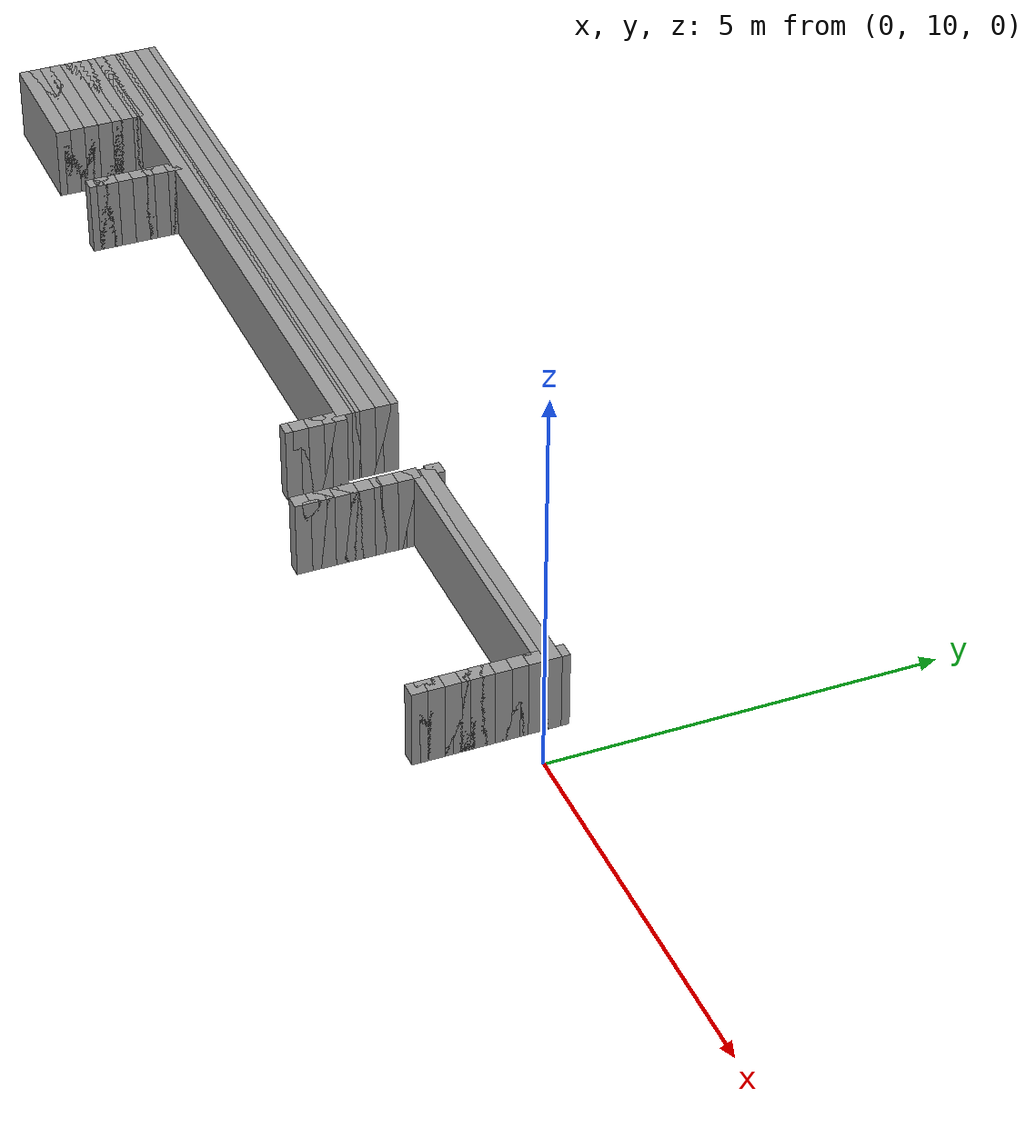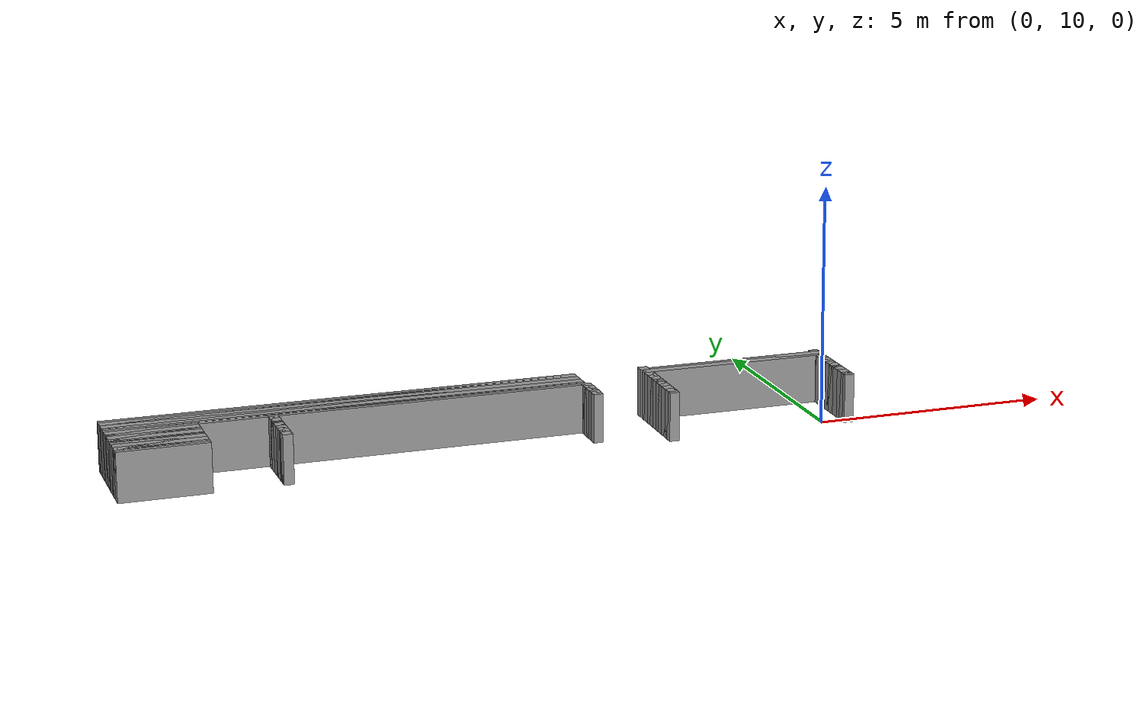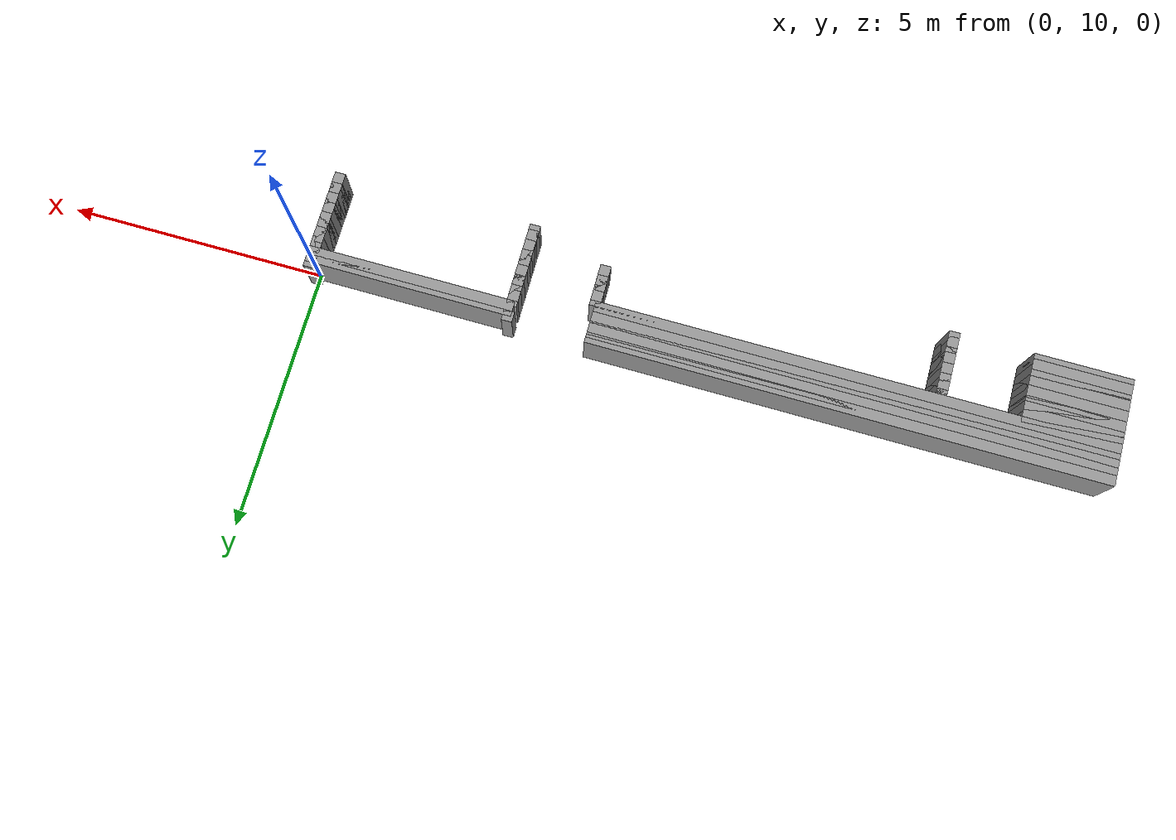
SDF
<sdf version="1.6">
 <world name="GridMap">
  <model name="GridMap">
   <link name="Wall_(116.5,84.0)">
    <collision name="Wall_(116.5,84.0)_Collision">
     <geometry><box><size>0.2 0.2 1.0</size></box></geometry>
     <pose>-11.65 8.4 0.5 0 -0 0</pose>
    </collision>
    <visual name="Wall_(116.5,84.0)_Visual">
     <geometry><box><size>0.2 0.2 1.0</size></box></geometry>
     <pose>-11.65 8.4 0.5 0 -0 0</pose>
     <material>
      <script><uri>file://media/materials/scripts/gazebo.material</uri><name>Gazebo/Grey</name></script>
      <ambient>1 1 1 1</ambient>
     </material>
     <meta><layer>0</layer></meta>
    </visual>
    <pose>0 0 0.5 0 -0 0</pose>
   </link>
   <link name="Wall_(140.0,84.0)">
    <collision name="Wall_(140.0,84.0)_Collision">
     <geometry><box><size>1.8 0.2 1.0</size></box></geometry>
     <pose>-14.0 8.4 0.5 0 -0 0</pose>
    </collision>
    <visual name="Wall_(140.0,84.0)_Visual">
     <geometry><box><size>1.8 0.2 1.0</size></box></geometry>
     <pose>-14.0 8.4 0.5 0 -0 0</pose>
     <material>
      <script><uri>file://media/materials/scripts/gazebo.material</uri><name>Gazebo/Grey</name></script>
      <ambient>1 1 1 1</ambient>
     </material>
     <meta><layer>0</layer></meta>
    </visual>
    <pose>0 0 0.5 0 -0 0</pose>
   </link>
   <link name="Wall_(1.0,85.0)">
    <collision name="Wall_(1.0,85.0)_Collision">
     <geometry><box><size>0.2 0.2 1.0</size></box></geometry>
     <pose>-0.1 8.5 0.5 0 -0 0</pose>
    </collision>
    <visual name="Wall_(1.0,85.0)_Visual">
     <geometry><box><size>0.2 0.2 1.0</size></box></geometry>
     <pose>-0.1 8.5 0.5 0 -0 0</pose>
     <material>
      <script><uri>file://media/materials/scripts/gazebo.material</uri><name>Gazebo/Grey</name></script>
      <ambient>1 1 1 1</ambient>
     </material>
     <meta><layer>0</layer></meta>
    </visual>
    <pose>0 0 0.5 0 -0 0</pose>
   </link>
   <link name="Wall_(38.5,85.0)">
    <collision name="Wall_(38.5,85.0)_Collision">
     <geometry><box><size>0.2 0.2 1.0</size></box></geometry>
     <pose>-3.85 8.5 0.5 0 -0 0</pose>
    </collision>
    <visual name="Wall_(38.5,85.0)_Visual">
     <geometry><box><size>0.2 0.2 1.0</size></box></geometry>
     <pose>-3.85 8.5 0.5 0 -0 0</pose>
     <material>
      <script><uri>file://media/materials/scripts/gazebo.material</uri><name>Gazebo/Grey</name></script>
      <ambient>1 1 1 1</ambient>
     </material>
     <meta><layer>0</layer></meta>
    </visual>
    <pose>0 0 0.5 0 -0 0</pose>
   </link>
   <link name="Wall_(116.5,85.0)">
    <collision name="Wall_(116.5,85.0)_Collision">
     <geometry><box><size>0.2 0.2 1.0</size></box></geometry>
     <pose>-11.65 8.5 0.5 0 -0 0</pose>
    </collision>
    <visual name="Wall_(116.5,85.0)_Visual">
     <geometry><box><size>0.2 0.2 1.0</size></box></geometry>
     <pose>-11.65 8.5 0.5 0 -0 0</pose>
     <material>
      <script><uri>file://media/materials/scripts/gazebo.material</uri><name>Gazebo/Grey</name></script>
      <ambient>1 1 1 1</ambient>
     </material>
     <meta><layer>0</layer></meta>
    </visual>
    <pose>0 0 0.5 0 -0 0</pose>
   </link>
   <link name="Wall_(140.0,85.0)">
    <collision name="Wall_(140.0,85.0)_Collision">
     <geometry><box><size>1.8 0.2 1.0</size></box></geometry>
     <pose>-14.0 8.5 0.5 0 -0 0</pose>
    </collision>
    <visual name="Wall_(140.0,85.0)_Visual">
     <geometry><box><size>1.8 0.2 1.0</size></box></geometry>
     <pose>-14.0 8.5 0.5 0 -0 0</pose>
     <material>
      <script><uri>file://media/materials/scripts/gazebo.material</uri><name>Gazebo/Grey</name></script>
      <ambient>1 1 1 1</ambient>
     </material>
     <meta><layer>0</layer></meta>
    </visual>
    <pose>0 0 0.5 0 -0 0</pose>
   </link>
   <link name="Wall_(1.0,86.0)">
    <collision name="Wall_(1.0,86.0)_Collision">
     <geometry><box><size>0.2 0.2 1.0</size></box></geometry>
     <pose>-0.1 8.6 0.5 0 -0 0</pose>
    </collision>
    <visual name="Wall_(1.0,86.0)_Visual">
     <geometry><box><size>0.2 0.2 1.0</size></box></geometry>
     <pose>-0.1 8.6 0.5 0 -0 0</pose>
     <material>
      <script><uri>file://media/materials/scripts/gazebo.material</uri><name>Gazebo/Grey</name></script>
      <ambient>1 1 1 1</ambient>
     </material>
     <meta><layer>0</layer></meta>
    </visual>
    <pose>0 0 0.5 0 -0 0</pose>
   </link>
   <link name="Wall_(38.5,86.0)">
    <collision name="Wall_(38.5,86.0)_Collision">
     <geometry><box><size>0.2 0.2 1.0</size></box></geometry>
     <pose>-3.85 8.6 0.5 0 -0 0</pose>
    </collision>
    <visual name="Wall_(38.5,86.0)_Visual">
     <geometry><box><size>0.2 0.2 1.0</size></box></geometry>
     <pose>-3.85 8.6 0.5 0 -0 0</pose>
     <material>
      <script><uri>file://media/materials/scripts/gazebo.material</uri><name>Gazebo/Grey</name></script>
      <ambient>1 1 1 1</ambient>
     </material>
     <meta><layer>0</layer></meta>
    </visual>
    <pose>0 0 0.5 0 -0 0</pose>
   </link>
   <link name="Wall_(116.5,86.0)">
    <collision name="Wall_(116.5,86.0)_Collision">
     <geometry><box><size>0.2 0.2 1.0</size></box></geometry>
     <pose>-11.65 8.6 0.5 0 -0 0</pose>
    </collision>
    <visual name="Wall_(116.5,86.0)_Visual">
     <geometry><box><size>0.2 0.2 1.0</size></box></geometry>
     <pose>-11.65 8.6 0.5 0 -0 0</pose>
     <material>
      <script><uri>file://media/materials/scripts/gazebo.material</uri><name>Gazebo/Grey</name></script>
      <ambient>1 1 1 1</ambient>
     </material>
     <meta><layer>0</layer></meta>
    </visual>
    <pose>0 0 0.5 0 -0 0</pose>
   </link>
   <link name="Wall_(140.0,86.0)">
    <collision name="Wall_(140.0,86.0)_Collision">
     <geometry><box><size>1.8 0.2 1.0</size></box></geometry>
     <pose>-14.0 8.6 0.5 0 -0 0</pose>
    </collision>
    <visual name="Wall_(140.0,86.0)_Visual">
     <geometry><box><size>1.8 0.2 1.0</size></box></geometry>
     <pose>-14.0 8.6 0.5 0 -0 0</pose>
     <material>
      <script><uri>file://media/materials/scripts/gazebo.material</uri><name>Gazebo/Grey</name></script>
      <ambient>1 1 1 1</ambient>
     </material>
     <meta><layer>0</layer></meta>
    </visual>
    <pose>0 0 0.5 0 -0 0</pose>
   </link>
   <link name="Wall_(1.0,87.0)">
    <collision name="Wall_(1.0,87.0)_Collision">
     <geometry><box><size>0.2 0.2 1.0</size></box></geometry>
     <pose>-0.1 8.700000000000001 0.5 0 -0 0</pose>
    </collision>
    <visual name="Wall_(1.0,87.0)_Visual">
     <geometry><box><size>0.2 0.2 1.0</size></box></geometry>
     <pose>-0.1 8.700000000000001 0.5 0 -0 0</pose>
     <material>
      <script><uri>file://media/materials/scripts/gazebo.material</uri><name>Gazebo/Grey</name></script>
      <ambient>1 1 1 1</ambient>
     </material>
     <meta><layer>0</layer></meta>
    </visual>
    <pose>0 0 0.5 0 -0 0</pose>
   </link>
   <link name="Wall_(38.5,87.0)">
    <collision name="Wall_(38.5,87.0)_Collision">
     <geometry><box><size>0.2 0.2 1.0</size></box></geometry>
     <pose>-3.85 8.700000000000001 0.5 0 -0 0</pose>
    </collision>
    <visual name="Wall_(38.5,87.0)_Visual">
     <geometry><box><size>0.2 0.2 1.0</size></box></geometry>
     <pose>-3.85 8.700000000000001 0.5 0 -0 0</pose>
     <material>
      <script><uri>file://media/materials/scripts/gazebo.material</uri><name>Gazebo/Grey</name></script>
      <ambient>1 1 1 1</ambient>
     </material>
     <meta><layer>0</layer></meta>
    </visual>
    <pose>0 0 0.5 0 -0 0</pose>
   </link>
   <link name="Wall_(116.5,87.0)">
    <collision name="Wall_(116.5,87.0)_Collision">
     <geometry><box><size>0.2 0.2 1.0</size></box></geometry>
     <pose>-11.65 8.700000000000001 0.5 0 -0 0</pose>
    </collision>
    <visual name="Wall_(116.5,87.0)_Visual">
     <geometry><box><size>0.2 0.2 1.0</size></box></geometry>
     <pose>-11.65 8.700000000000001 0.5 0 -0 0</pose>
     <material>
      <script><uri>file://media/materials/scripts/gazebo.material</uri><name>Gazebo/Grey</name></script>
      <ambient>1 1 1 1</ambient>
     </material>
     <meta><layer>0</layer></meta>
    </visual>
    <pose>0 0 0.5 0 -0 0</pose>
   </link>
   <link name="Wall_(140.0,87.0)">
    <collision name="Wall_(140.0,87.0)_Collision">
     <geometry><box><size>1.8 0.2 1.0</size></box></geometry>
     <pose>-14.0 8.700000000000001 0.5 0 -0 0</pose>
    </collision>
    <visual name="Wall_(140.0,87.0)_Visual">
     <geometry><box><size>1.8 0.2 1.0</size></box></geometry>
     <pose>-14.0 8.700000000000001 0.5 0 -0 0</pose>
     <material>
      <script><uri>file://media/materials/scripts/gazebo.material</uri><name>Gazebo/Grey</name></script>
      <ambient>1 1 1 1</ambient>
     </material>
     <meta><layer>0</layer></meta>
    </visual>
    <pose>0 0 0.5 0 -0 0</pose>
   </link>
   <link name="Wall_(1.0,88.0)">
    <collision name="Wall_(1.0,88.0)_Collision">
     <geometry><box><size>0.2 0.2 1.0</size></box></geometry>
     <pose>-0.1 8.8 0.5 0 -0 0</pose>
    </collision>
    <visual name="Wall_(1.0,88.0)_Visual">
     <geometry><box><size>0.2 0.2 1.0</size></box></geometry>
     <pose>-0.1 8.8 0.5 0 -0 0</pose>
     <material>
      <script><uri>file://media/materials/scripts/gazebo.material</uri><name>Gazebo/Grey</name></script>
      <ambient>1 1 1 1</ambient>
     </material>
     <meta><layer>0</layer></meta>
    </visual>
    <pose>0 0 0.5 0 -0 0</pose>
   </link>
   <link name="Wall_(38.5,88.0)">
    <collision name="Wall_(38.5,88.0)_Collision">
     <geometry><box><size>0.2 0.2 1.0</size></box></geometry>
     <pose>-3.85 8.8 0.5 0 -0 0</pose>
    </collision>
    <visual name="Wall_(38.5,88.0)_Visual">
     <geometry><box><size>0.2 0.2 1.0</size></box></geometry>
     <pose>-3.85 8.8 0.5 0 -0 0</pose>
     <material>
      <script><uri>file://media/materials/scripts/gazebo.material</uri><name>Gazebo/Grey</name></script>
      <ambient>1 1 1 1</ambient>
     </material>
     <meta><layer>0</layer></meta>
    </visual>
    <pose>0 0 0.5 0 -0 0</pose>
   </link>
   <link name="Wall_(116.5,88.0)">
    <collision name="Wall_(116.5,88.0)_Collision">
     <geometry><box><size>0.2 0.2 1.0</size></box></geometry>
     <pose>-11.65 8.8 0.5 0 -0 0</pose>
    </collision>
    <visual name="Wall_(116.5,88.0)_Visual">
     <geometry><box><size>0.2 0.2 1.0</size></box></geometry>
     <pose>-11.65 8.8 0.5 0 -0 0</pose>
     <material>
      <script><uri>file://media/materials/scripts/gazebo.material</uri><name>Gazebo/Grey</name></script>
      <ambient>1 1 1 1</ambient>
     </material>
     <meta><layer>0</layer></meta>
    </visual>
    <pose>0 0 0.5 0 -0 0</pose>
   </link>
   <link name="Wall_(140.0,88.0)">
    <collision name="Wall_(140.0,88.0)_Collision">
     <geometry><box><size>1.8 0.2 1.0</size></box></geometry>
     <pose>-14.0 8.8 0.5 0 -0 0</pose>
    </collision>
    <visual name="Wall_(140.0,88.0)_Visual">
     <geometry><box><size>1.8 0.2 1.0</size></box></geometry>
     <pose>-14.0 8.8 0.5 0 -0 0</pose>
     <material>
      <script><uri>file://media/materials/scripts/gazebo.material</uri><name>Gazebo/Grey</name></script>
      <ambient>1 1 1 1</ambient>
     </material>
     <meta><layer>0</layer></meta>
    </visual>
    <pose>0 0 0.5 0 -0 0</pose>
   </link>
   <link name="Wall_(1.0,89.0)">
    <collision name="Wall_(1.0,89.0)_Collision">
     <geometry><box><size>0.2 0.2 1.0</size></box></geometry>
     <pose>-0.1 8.9 0.5 0 -0 0</pose>
    </collision>
    <visual name="Wall_(1.0,89.0)_Visual">
     <geometry><box><size>0.2 0.2 1.0</size></box></geometry>
     <pose>-0.1 8.9 0.5 0 -0 0</pose>
     <material>
      <script><uri>file://media/materials/scripts/gazebo.material</uri><name>Gazebo/Grey</name></script>
      <ambient>1 1 1 1</ambient>
     </material>
     <meta><layer>0</layer></meta>
    </visual>
    <pose>0 0 0.5 0 -0 0</pose>
   </link>
   <link name="Wall_(38.5,89.0)">
    <collision name="Wall_(38.5,89.0)_Collision">
     <geometry><box><size>0.2 0.2 1.0</size></box></geometry>
     <pose>-3.85 8.9 0.5 0 -0 0</pose>
    </collision>
    <visual name="Wall_(38.5,89.0)_Visual">
     <geometry><box><size>0.2 0.2 1.0</size></box></geometry>
     <pose>-3.85 8.9 0.5 0 -0 0</pose>
     <material>
      <script><uri>file://media/materials/scripts/gazebo.material</uri><name>Gazebo/Grey</name></script>
      <ambient>1 1 1 1</ambient>
     </material>
     <meta><layer>0</layer></meta>
    </visual>
    <pose>0 0 0.5 0 -0 0</pose>
   </link>
   <link name="Wall_(53.0,89.0)">
    <collision name="Wall_(53.0,89.0)_Collision">
     <geometry><box><size>0.2 0.2 1.0</size></box></geometry>
     <pose>-5.300000000000001 8.9 0.5 0 -0 0</pose>
    </collision>
    <visual name="Wall_(53.0,89.0)_Visual">
     <geometry><box><size>0.2 0.2 1.0</size></box></geometry>
     <pose>-5.300000000000001 8.9 0.5 0 -0 0</pose>
     <material>
      <script><uri>file://media/materials/scripts/gazebo.material</uri><name>Gazebo/Grey</name></script>
      <ambient>1 1 1 1</ambient>
     </material>
     <meta><layer>0</layer></meta>
    </visual>
    <pose>0 0 0.5 0 -0 0</pose>
   </link>
   <link name="Wall_(116.5,89.0)">
    <collision name="Wall_(116.5,89.0)_Collision">
     <geometry><box><size>0.2 0.2 1.0</size></box></geometry>
     <pose>-11.65 8.9 0.5 0 -0 0</pose>
    </collision>
    <visual name="Wall_(116.5,89.0)_Visual">
     <geometry><box><size>0.2 0.2 1.0</size></box></geometry>
     <pose>-11.65 8.9 0.5 0 -0 0</pose>
     <material>
      <script><uri>file://media/materials/scripts/gazebo.material</uri><name>Gazebo/Grey</name></script>
      <ambient>1 1 1 1</ambient>
     </material>
     <meta><layer>0</layer></meta>
    </visual>
    <pose>0 0 0.5 0 -0 0</pose>
   </link>
   <link name="Wall_(140.0,89.0)">
    <collision name="Wall_(140.0,89.0)_Collision">
     <geometry><box><size>1.8 0.2 1.0</size></box></geometry>
     <pose>-14.0 8.9 0.5 0 -0 0</pose>
    </collision>
    <visual name="Wall_(140.0,89.0)_Visual">
     <geometry><box><size>1.8 0.2 1.0</size></box></geometry>
     <pose>-14.0 8.9 0.5 0 -0 0</pose>
     <material>
      <script><uri>file://media/materials/scripts/gazebo.material</uri><name>Gazebo/Grey</name></script>
      <ambient>1 1 1 1</ambient>
     </material>
     <meta><layer>0</layer></meta>
    </visual>
    <pose>0 0 0.5 0 -0 0</pose>
   </link>
   <link name="Wall_(1.0,90.0)">
    <collision name="Wall_(1.0,90.0)_Collision">
     <geometry><box><size>0.2 0.2 1.0</size></box></geometry>
     <pose>-0.1 9.0 0.5 0 -0 0</pose>
    </collision>
    <visual name="Wall_(1.0,90.0)_Visual">
     <geometry><box><size>0.2 0.2 1.0</size></box></geometry>
     <pose>-0.1 9.0 0.5 0 -0 0</pose>
     <material>
      <script><uri>file://media/materials/scripts/gazebo.material</uri><name>Gazebo/Grey</name></script>
      <ambient>1 1 1 1</ambient>
     </material>
     <meta><layer>0</layer></meta>
    </visual>
    <pose>0 0 0.5 0 -0 0</pose>
   </link>
   <link name="Wall_(38.5,90.0)">
    <collision name="Wall_(38.5,90.0)_Collision">
     <geometry><box><size>0.2 0.2 1.0</size></box></geometry>
     <pose>-3.85 9.0 0.5 0 -0 0</pose>
    </collision>
    <visual name="Wall_(38.5,90.0)_Visual">
     <geometry><box><size>0.2 0.2 1.0</size></box></geometry>
     <pose>-3.85 9.0 0.5 0 -0 0</pose>
     <material>
      <script><uri>file://media/materials/scripts/gazebo.material</uri><name>Gazebo/Grey</name></script>
      <ambient>1 1 1 1</ambient>
     </material>
     <meta><layer>0</layer></meta>
    </visual>
    <pose>0 0 0.5 0 -0 0</pose>
   </link>
   <link name="Wall_(53.0,90.0)">
    <collision name="Wall_(53.0,90.0)_Collision">
     <geometry><box><size>0.2 0.2 1.0</size></box></geometry>
     <pose>-5.300000000000001 9.0 0.5 0 -0 0</pose>
    </collision>
    <visual name="Wall_(53.0,90.0)_Visual">
     <geometry><box><size>0.2 0.2 1.0</size></box></geometry>
     <pose>-5.300000000000001 9.0 0.5 0 -0 0</pose>
     <material>
      <script><uri>file://media/materials/scripts/gazebo.material</uri><name>Gazebo/Grey</name></script>
      <ambient>1 1 1 1</ambient>
     </material>
     <meta><layer>0</layer></meta>
    </visual>
    <pose>0 0 0.5 0 -0 0</pose>
   </link>
   <link name="Wall_(116.5,90.0)">
    <collision name="Wall_(116.5,90.0)_Collision">
     <geometry><box><size>0.2 0.2 1.0</size></box></geometry>
     <pose>-11.65 9.0 0.5 0 -0 0</pose>
    </collision>
    <visual name="Wall_(116.5,90.0)_Visual">
     <geometry><box><size>0.2 0.2 1.0</size></box></geometry>
     <pose>-11.65 9.0 0.5 0 -0 0</pose>
     <material>
      <script><uri>file://media/materials/scripts/gazebo.material</uri><name>Gazebo/Grey</name></script>
      <ambient>1 1 1 1</ambient>
     </material>
     <meta><layer>0</layer></meta>
    </visual>
    <pose>0 0 0.5 0 -0 0</pose>
   </link>
   <link name="Wall_(140.0,90.0)">
    <collision name="Wall_(140.0,90.0)_Collision">
     <geometry><box><size>1.8 0.2 1.0</size></box></geometry>
     <pose>-14.0 9.0 0.5 0 -0 0</pose>
    </collision>
    <visual name="Wall_(140.0,90.0)_Visual">
     <geometry><box><size>1.8 0.2 1.0</size></box></geometry>
     <pose>-14.0 9.0 0.5 0 -0 0</pose>
     <material>
      <script><uri>file://media/materials/scripts/gazebo.material</uri><name>Gazebo/Grey</name></script>
      <ambient>1 1 1 1</ambient>
     </material>
     <meta><layer>0</layer></meta>
    </visual>
    <pose>0 0 0.5 0 -0 0</pose>
   </link>
   <link name="Wall_(1.0,91.0)">
    <collision name="Wall_(1.0,91.0)_Collision">
     <geometry><box><size>0.2 0.2 1.0</size></box></geometry>
     <pose>-0.1 9.1 0.5 0 -0 0</pose>
    </collision>
    <visual name="Wall_(1.0,91.0)_Visual">
     <geometry><box><size>0.2 0.2 1.0</size></box></geometry>
     <pose>-0.1 9.1 0.5 0 -0 0</pose>
     <material>
      <script><uri>file://media/materials/scripts/gazebo.material</uri><name>Gazebo/Grey</name></script>
      <ambient>1 1 1 1</ambient>
     </material>
     <meta><layer>0</layer></meta>
    </visual>
    <pose>0 0 0.5 0 -0 0</pose>
   </link>
   <link name="Wall_(38.5,91.0)">
    <collision name="Wall_(38.5,91.0)_Collision">
     <geometry><box><size>0.2 0.2 1.0</size></box></geometry>
     <pose>-3.85 9.1 0.5 0 -0 0</pose>
    </collision>
    <visual name="Wall_(38.5,91.0)_Visual">
     <geometry><box><size>0.2 0.2 1.0</size></box></geometry>
     <pose>-3.85 9.1 0.5 0 -0 0</pose>
     <material>
      <script><uri>file://media/materials/scripts/gazebo.material</uri><name>Gazebo/Grey</name></script>
      <ambient>1 1 1 1</ambient>
     </material>
     <meta><layer>0</layer></meta>
    </visual>
    <pose>0 0 0.5 0 -0 0</pose>
   </link>
   <link name="Wall_(53.0,91.0)">
    <collision name="Wall_(53.0,91.0)_Collision">
     <geometry><box><size>0.2 0.2 1.0</size></box></geometry>
     <pose>-5.300000000000001 9.1 0.5 0 -0 0</pose>
    </collision>
    <visual name="Wall_(53.0,91.0)_Visual">
     <geometry><box><size>0.2 0.2 1.0</size></box></geometry>
     <pose>-5.300000000000001 9.1 0.5 0 -0 0</pose>
     <material>
      <script><uri>file://media/materials/scripts/gazebo.material</uri><name>Gazebo/Grey</name></script>
      <ambient>1 1 1 1</ambient>
     </material>
     <meta><layer>0</layer></meta>
    </visual>
    <pose>0 0 0.5 0 -0 0</pose>
   </link>
   <link name="Wall_(116.5,91.0)">
    <collision name="Wall_(116.5,91.0)_Collision">
     <geometry><box><size>0.2 0.2 1.0</size></box></geometry>
     <pose>-11.65 9.1 0.5 0 -0 0</pose>
    </collision>
    <visual name="Wall_(116.5,91.0)_Visual">
     <geometry><box><size>0.2 0.2 1.0</size></box></geometry>
     <pose>-11.65 9.1 0.5 0 -0 0</pose>
     <material>
      <script><uri>file://media/materials/scripts/gazebo.material</uri><name>Gazebo/Grey</name></script>
      <ambient>1 1 1 1</ambient>
     </material>
     <meta><layer>0</layer></meta>
    </visual>
    <pose>0 0 0.5 0 -0 0</pose>
   </link>
   <link name="Wall_(140.0,91.0)">
    <collision name="Wall_(140.0,91.0)_Collision">
     <geometry><box><size>1.8 0.2 1.0</size></box></geometry>
     <pose>-14.0 9.1 0.5 0 -0 0</pose>
    </collision>
    <visual name="Wall_(140.0,91.0)_Visual">
     <geometry><box><size>1.8 0.2 1.0</size></box></geometry>
     <pose>-14.0 9.1 0.5 0 -0 0</pose>
     <material>
      <script><uri>file://media/materials/scripts/gazebo.material</uri><name>Gazebo/Grey</name></script>
      <ambient>1 1 1 1</ambient>
     </material>
     <meta><layer>0</layer></meta>
    </visual>
    <pose>0 0 0.5 0 -0 0</pose>
   </link>
   <link name="Wall_(1.0,92.0)">
    <collision name="Wall_(1.0,92.0)_Collision">
     <geometry><box><size>0.2 0.2 1.0</size></box></geometry>
     <pose>-0.1 9.200000000000001 0.5 0 -0 0</pose>
    </collision>
    <visual name="Wall_(1.0,92.0)_Visual">
     <geometry><box><size>0.2 0.2 1.0</size></box></geometry>
     <pose>-0.1 9.200000000000001 0.5 0 -0 0</pose>
     <material>
      <script><uri>file://media/materials/scripts/gazebo.material</uri><name>Gazebo/Grey</name></script>
      <ambient>1 1 1 1</ambient>
     </material>
     <meta><layer>0</layer></meta>
    </visual>
    <pose>0 0 0.5 0 -0 0</pose>
   </link>
   <link name="Wall_(38.5,92.0)">
    <collision name="Wall_(38.5,92.0)_Collision">
     <geometry><box><size>0.2 0.2 1.0</size></box></geometry>
     <pose>-3.85 9.200000000000001 0.5 0 -0 0</pose>
    </collision>
    <visual name="Wall_(38.5,92.0)_Visual">
     <geometry><box><size>0.2 0.2 1.0</size></box></geometry>
     <pose>-3.85 9.200000000000001 0.5 0 -0 0</pose>
     <material>
      <script><uri>file://media/materials/scripts/gazebo.material</uri><name>Gazebo/Grey</name></script>
      <ambient>1 1 1 1</ambient>
     </material>
     <meta><layer>0</layer></meta>
    </visual>
    <pose>0 0 0.5 0 -0 0</pose>
   </link>
   <link name="Wall_(53.0,92.0)">
    <collision name="Wall_(53.0,92.0)_Collision">
     <geometry><box><size>0.2 0.2 1.0</size></box></geometry>
     <pose>-5.300000000000001 9.200000000000001 0.5 0 -0 0</pose>
    </collision>
    <visual name="Wall_(53.0,92.0)_Visual">
     <geometry><box><size>0.2 0.2 1.0</size></box></geometry>
     <pose>-5.300000000000001 9.200000000000001 0.5 0 -0 0</pose>
     <material>
      <script><uri>file://media/materials/scripts/gazebo.material</uri><name>Gazebo/Grey</name></script>
      <ambient>1 1 1 1</ambient>
     </material>
     <meta><layer>0</layer></meta>
    </visual>
    <pose>0 0 0.5 0 -0 0</pose>
   </link>
   <link name="Wall_(116.5,92.0)">
    <collision name="Wall_(116.5,92.0)_Collision">
     <geometry><box><size>0.2 0.2 1.0</size></box></geometry>
     <pose>-11.65 9.200000000000001 0.5 0 -0 0</pose>
    </collision>
    <visual name="Wall_(116.5,92.0)_Visual">
     <geometry><box><size>0.2 0.2 1.0</size></box></geometry>
     <pose>-11.65 9.200000000000001 0.5 0 -0 0</pose>
     <material>
      <script><uri>file://media/materials/scripts/gazebo.material</uri><name>Gazebo/Grey</name></script>
      <ambient>1 1 1 1</ambient>
     </material>
     <meta><layer>0</layer></meta>
    </visual>
    <pose>0 0 0.5 0 -0 0</pose>
   </link>
   <link name="Wall_(140.0,92.0)">
    <collision name="Wall_(140.0,92.0)_Collision">
     <geometry><box><size>1.8 0.2 1.0</size></box></geometry>
     <pose>-14.0 9.200000000000001 0.5 0 -0 0</pose>
    </collision>
    <visual name="Wall_(140.0,92.0)_Visual">
     <geometry><box><size>1.8 0.2 1.0</size></box></geometry>
     <pose>-14.0 9.200000000000001 0.5 0 -0 0</pose>
     <material>
      <script><uri>file://media/materials/scripts/gazebo.material</uri><name>Gazebo/Grey</name></script>
      <ambient>1 1 1 1</ambient>
     </material>
     <meta><layer>0</layer></meta>
    </visual>
    <pose>0 0 0.5 0 -0 0</pose>
   </link>
   <link name="Wall_(1.0,93.0)">
    <collision name="Wall_(1.0,93.0)_Collision">
     <geometry><box><size>0.2 0.2 1.0</size></box></geometry>
     <pose>-0.1 9.3 0.5 0 -0 0</pose>
    </collision>
    <visual name="Wall_(1.0,93.0)_Visual">
     <geometry><box><size>0.2 0.2 1.0</size></box></geometry>
     <pose>-0.1 9.3 0.5 0 -0 0</pose>
     <material>
      <script><uri>file://media/materials/scripts/gazebo.material</uri><name>Gazebo/Grey</name></script>
      <ambient>1 1 1 1</ambient>
     </material>
     <meta><layer>0</layer></meta>
    </visual>
    <pose>0 0 0.5 0 -0 0</pose>
   </link>
   <link name="Wall_(38.5,93.0)">
    <collision name="Wall_(38.5,93.0)_Collision">
     <geometry><box><size>0.2 0.2 1.0</size></box></geometry>
     <pose>-3.85 9.3 0.5 0 -0 0</pose>
    </collision>
    <visual name="Wall_(38.5,93.0)_Visual">
     <geometry><box><size>0.2 0.2 1.0</size></box></geometry>
     <pose>-3.85 9.3 0.5 0 -0 0</pose>
     <material>
      <script><uri>file://media/materials/scripts/gazebo.material</uri><name>Gazebo/Grey</name></script>
      <ambient>1 1 1 1</ambient>
     </material>
     <meta><layer>0</layer></meta>
    </visual>
    <pose>0 0 0.5 0 -0 0</pose>
   </link>
   <link name="Wall_(53.0,93.0)">
    <collision name="Wall_(53.0,93.0)_Collision">
     <geometry><box><size>0.2 0.2 1.0</size></box></geometry>
     <pose>-5.300000000000001 9.3 0.5 0 -0 0</pose>
    </collision>
    <visual name="Wall_(53.0,93.0)_Visual">
     <geometry><box><size>0.2 0.2 1.0</size></box></geometry>
     <pose>-5.300000000000001 9.3 0.5 0 -0 0</pose>
     <material>
      <script><uri>file://media/materials/scripts/gazebo.material</uri><name>Gazebo/Grey</name></script>
      <ambient>1 1 1 1</ambient>
     </material>
     <meta><layer>0</layer></meta>
    </visual>
    <pose>0 0 0.5 0 -0 0</pose>
   </link>
   <link name="Wall_(116.5,93.0)">
    <collision name="Wall_(116.5,93.0)_Collision">
     <geometry><box><size>0.2 0.2 1.0</size></box></geometry>
     <pose>-11.65 9.3 0.5 0 -0 0</pose>
    </collision>
    <visual name="Wall_(116.5,93.0)_Visual">
     <geometry><box><size>0.2 0.2 1.0</size></box></geometry>
     <pose>-11.65 9.3 0.5 0 -0 0</pose>
     <material>
      <script><uri>file://media/materials/scripts/gazebo.material</uri><name>Gazebo/Grey</name></script>
      <ambient>1 1 1 1</ambient>
     </material>
     <meta><layer>0</layer></meta>
    </visual>
    <pose>0 0 0.5 0 -0 0</pose>
   </link>
   <link name="Wall_(140.0,93.0)">
    <collision name="Wall_(140.0,93.0)_Collision">
     <geometry><box><size>1.8 0.2 1.0</size></box></geometry>
     <pose>-14.0 9.3 0.5 0 -0 0</pose>
    </collision>
    <visual name="Wall_(140.0,93.0)_Visual">
     <geometry><box><size>1.8 0.2 1.0</size></box></geometry>
     <pose>-14.0 9.3 0.5 0 -0 0</pose>
     <material>
      <script><uri>file://media/materials/scripts/gazebo.material</uri><name>Gazebo/Grey</name></script>
      <ambient>1 1 1 1</ambient>
     </material>
     <meta><layer>0</layer></meta>
    </visual>
    <pose>0 0 0.5 0 -0 0</pose>
   </link>
   <link name="Wall_(1.0,94.0)">
    <collision name="Wall_(1.0,94.0)_Collision">
     <geometry><box><size>0.2 0.2 1.0</size></box></geometry>
     <pose>-0.1 9.4 0.5 0 -0 0</pose>
    </collision>
    <visual name="Wall_(1.0,94.0)_Visual">
     <geometry><box><size>0.2 0.2 1.0</size></box></geometry>
     <pose>-0.1 9.4 0.5 0 -0 0</pose>
     <material>
      <script><uri>file://media/materials/scripts/gazebo.material</uri><name>Gazebo/Grey</name></script>
      <ambient>1 1 1 1</ambient>
     </material>
     <meta><layer>0</layer></meta>
    </visual>
    <pose>0 0 0.5 0 -0 0</pose>
   </link>
   <link name="Wall_(38.5,94.0)">
    <collision name="Wall_(38.5,94.0)_Collision">
     <geometry><box><size>0.2 0.2 1.0</size></box></geometry>
     <pose>-3.85 9.4 0.5 0 -0 0</pose>
    </collision>
    <visual name="Wall_(38.5,94.0)_Visual">
     <geometry><box><size>0.2 0.2 1.0</size></box></geometry>
     <pose>-3.85 9.4 0.5 0 -0 0</pose>
     <material>
      <script><uri>file://media/materials/scripts/gazebo.material</uri><name>Gazebo/Grey</name></script>
      <ambient>1 1 1 1</ambient>
     </material>
     <meta><layer>0</layer></meta>
    </visual>
    <pose>0 0 0.5 0 -0 0</pose>
   </link>
   <link name="Wall_(53.0,94.0)">
    <collision name="Wall_(53.0,94.0)_Collision">
     <geometry><box><size>0.2 0.2 1.0</size></box></geometry>
     <pose>-5.300000000000001 9.4 0.5 0 -0 0</pose>
    </collision>
    <visual name="Wall_(53.0,94.0)_Visual">
     <geometry><box><size>0.2 0.2 1.0</size></box></geometry>
     <pose>-5.300000000000001 9.4 0.5 0 -0 0</pose>
     <material>
      <script><uri>file://media/materials/scripts/gazebo.material</uri><name>Gazebo/Grey</name></script>
      <ambient>1 1 1 1</ambient>
     </material>
     <meta><layer>0</layer></meta>
    </visual>
    <pose>0 0 0.5 0 -0 0</pose>
   </link>
   <link name="Wall_(116.5,94.0)">
    <collision name="Wall_(116.5,94.0)_Collision">
     <geometry><box><size>0.2 0.2 1.0</size></box></geometry>
     <pose>-11.65 9.4 0.5 0 -0 0</pose>
    </collision>
    <visual name="Wall_(116.5,94.0)_Visual">
     <geometry><box><size>0.2 0.2 1.0</size></box></geometry>
     <pose>-11.65 9.4 0.5 0 -0 0</pose>
     <material>
      <script><uri>file://media/materials/scripts/gazebo.material</uri><name>Gazebo/Grey</name></script>
      <ambient>1 1 1 1</ambient>
     </material>
     <meta><layer>0</layer></meta>
    </visual>
    <pose>0 0 0.5 0 -0 0</pose>
   </link>
   <link name="Wall_(140.0,94.0)">
    <collision name="Wall_(140.0,94.0)_Collision">
     <geometry><box><size>1.8 0.2 1.0</size></box></geometry>
     <pose>-14.0 9.4 0.5 0 -0 0</pose>
    </collision>
    <visual name="Wall_(140.0,94.0)_Visual">
     <geometry><box><size>1.8 0.2 1.0</size></box></geometry>
     <pose>-14.0 9.4 0.5 0 -0 0</pose>
     <material>
      <script><uri>file://media/materials/scripts/gazebo.material</uri><name>Gazebo/Grey</name></script>
      <ambient>1 1 1 1</ambient>
     </material>
     <meta><layer>0</layer></meta>
    </visual>
    <pose>0 0 0.5 0 -0 0</pose>
   </link>
   <link name="Wall_(1.0,95.0)">
    <collision name="Wall_(1.0,95.0)_Collision">
     <geometry><box><size>0.2 0.2 1.0</size></box></geometry>
     <pose>-0.1 9.5 0.5 0 -0 0</pose>
    </collision>
    <visual name="Wall_(1.0,95.0)_Visual">
     <geometry><box><size>0.2 0.2 1.0</size></box></geometry>
     <pose>-0.1 9.5 0.5 0 -0 0</pose>
     <material>
      <script><uri>file://media/materials/scripts/gazebo.material</uri><name>Gazebo/Grey</name></script>
      <ambient>1 1 1 1</ambient>
     </material>
     <meta><layer>0</layer></meta>
    </visual>
    <pose>0 0 0.5 0 -0 0</pose>
   </link>
   <link name="Wall_(38.5,95.0)">
    <collision name="Wall_(38.5,95.0)_Collision">
     <geometry><box><size>0.2 0.2 1.0</size></box></geometry>
     <pose>-3.85 9.5 0.5 0 -0 0</pose>
    </collision>
    <visual name="Wall_(38.5,95.0)_Visual">
     <geometry><box><size>0.2 0.2 1.0</size></box></geometry>
     <pose>-3.85 9.5 0.5 0 -0 0</pose>
     <material>
      <script><uri>file://media/materials/scripts/gazebo.material</uri><name>Gazebo/Grey</name></script>
      <ambient>1 1 1 1</ambient>
     </material>
     <meta><layer>0</layer></meta>
    </visual>
    <pose>0 0 0.5 0 -0 0</pose>
   </link>
   <link name="Wall_(53.0,95.0)">
    <collision name="Wall_(53.0,95.0)_Collision">
     <geometry><box><size>0.2 0.2 1.0</size></box></geometry>
     <pose>-5.300000000000001 9.5 0.5 0 -0 0</pose>
    </collision>
    <visual name="Wall_(53.0,95.0)_Visual">
     <geometry><box><size>0.2 0.2 1.0</size></box></geometry>
     <pose>-5.300000000000001 9.5 0.5 0 -0 0</pose>
     <material>
      <script><uri>file://media/materials/scripts/gazebo.material</uri><name>Gazebo/Grey</name></script>
      <ambient>1 1 1 1</ambient>
     </material>
     <meta><layer>0</layer></meta>
    </visual>
    <pose>0 0 0.5 0 -0 0</pose>
   </link>
   <link name="Wall_(116.5,95.0)">
    <collision name="Wall_(116.5,95.0)_Collision">
     <geometry><box><size>0.2 0.2 1.0</size></box></geometry>
     <pose>-11.65 9.5 0.5 0 -0 0</pose>
    </collision>
    <visual name="Wall_(116.5,95.0)_Visual">
     <geometry><box><size>0.2 0.2 1.0</size></box></geometry>
     <pose>-11.65 9.5 0.5 0 -0 0</pose>
     <material>
      <script><uri>file://media/materials/scripts/gazebo.material</uri><name>Gazebo/Grey</name></script>
      <ambient>1 1 1 1</ambient>
     </material>
     <meta><layer>0</layer></meta>
    </visual>
    <pose>0 0 0.5 0 -0 0</pose>
   </link>
   <link name="Wall_(140.0,95.0)">
    <collision name="Wall_(140.0,95.0)_Collision">
     <geometry><box><size>1.8 0.2 1.0</size></box></geometry>
     <pose>-14.0 9.5 0.5 0 -0 0</pose>
    </collision>
    <visual name="Wall_(140.0,95.0)_Visual">
     <geometry><box><size>1.8 0.2 1.0</size></box></geometry>
     <pose>-14.0 9.5 0.5 0 -0 0</pose>
     <material>
      <script><uri>file://media/materials/scripts/gazebo.material</uri><name>Gazebo/Grey</name></script>
      <ambient>1 1 1 1</ambient>
     </material>
     <meta><layer>0</layer></meta>
    </visual>
    <pose>0 0 0.5 0 -0 0</pose>
   </link>
   <link name="Wall_(1.0,96.0)">
    <collision name="Wall_(1.0,96.0)_Collision">
     <geometry><box><size>0.2 0.2 1.0</size></box></geometry>
     <pose>-0.1 9.600000000000001 0.5 0 -0 0</pose>
    </collision>
    <visual name="Wall_(1.0,96.0)_Visual">
     <geometry><box><size>0.2 0.2 1.0</size></box></geometry>
     <pose>-0.1 9.600000000000001 0.5 0 -0 0</pose>
     <material>
      <script><uri>file://media/materials/scripts/gazebo.material</uri><name>Gazebo/Grey</name></script>
      <ambient>1 1 1 1</ambient>
     </material>
     <meta><layer>0</layer></meta>
    </visual>
    <pose>0 0 0.5 0 -0 0</pose>
   </link>
   <link name="Wall_(38.5,96.0)">
    <collision name="Wall_(38.5,96.0)_Collision">
     <geometry><box><size>0.2 0.2 1.0</size></box></geometry>
     <pose>-3.85 9.600000000000001 0.5 0 -0 0</pose>
    </collision>
    <visual name="Wall_(38.5,96.0)_Visual">
     <geometry><box><size>0.2 0.2 1.0</size></box></geometry>
     <pose>-3.85 9.600000000000001 0.5 0 -0 0</pose>
     <material>
      <script><uri>file://media/materials/scripts/gazebo.material</uri><name>Gazebo/Grey</name></script>
      <ambient>1 1 1 1</ambient>
     </material>
     <meta><layer>0</layer></meta>
    </visual>
    <pose>0 0 0.5 0 -0 0</pose>
   </link>
   <link name="Wall_(101.0,96.0)">
    <collision name="Wall_(101.0,96.0)_Collision">
     <geometry><box><size>9.600000000000001 0.2 1.0</size></box></geometry>
     <pose>-10.100000000000001 9.600000000000001 0.5 0 -0 0</pose>
    </collision>
    <visual name="Wall_(101.0,96.0)_Visual">
     <geometry><box><size>9.600000000000001 0.2 1.0</size></box></geometry>
     <pose>-10.100000000000001 9.600000000000001 0.5 0 -0 0</pose>
     <material>
      <script><uri>file://media/materials/scripts/gazebo.material</uri><name>Gazebo/Grey</name></script>
      <ambient>1 1 1 1</ambient>
     </material>
     <meta><layer>0</layer></meta>
    </visual>
    <pose>0 0 0.5 0 -0 0</pose>
   </link>
   <link name="Wall_(1.0,97.0)">
    <collision name="Wall_(1.0,97.0)_Collision">
     <geometry><box><size>0.2 0.2 1.0</size></box></geometry>
     <pose>-0.1 9.700000000000001 0.5 0 -0 0</pose>
    </collision>
    <visual name="Wall_(1.0,97.0)_Visual">
     <geometry><box><size>0.2 0.2 1.0</size></box></geometry>
     <pose>-0.1 9.700000000000001 0.5 0 -0 0</pose>
     <material>
      <script><uri>file://media/materials/scripts/gazebo.material</uri><name>Gazebo/Grey</name></script>
      <ambient>1 1 1 1</ambient>
     </material>
     <meta><layer>0</layer></meta>
    </visual>
    <pose>0 0 0.5 0 -0 0</pose>
   </link>
   <link name="Wall_(38.5,97.0)">
    <collision name="Wall_(38.5,97.0)_Collision">
     <geometry><box><size>0.2 0.2 1.0</size></box></geometry>
     <pose>-3.85 9.700000000000001 0.5 0 -0 0</pose>
    </collision>
    <visual name="Wall_(38.5,97.0)_Visual">
     <geometry><box><size>0.2 0.2 1.0</size></box></geometry>
     <pose>-3.85 9.700000000000001 0.5 0 -0 0</pose>
     <material>
      <script><uri>file://media/materials/scripts/gazebo.material</uri><name>Gazebo/Grey</name></script>
      <ambient>1 1 1 1</ambient>
     </material>
     <meta><layer>0</layer></meta>
    </visual>
    <pose>0 0 0.5 0 -0 0</pose>
   </link>
   <link name="Wall_(101.0,97.0)">
    <collision name="Wall_(101.0,97.0)_Collision">
     <geometry><box><size>9.600000000000001 0.2 1.0</size></box></geometry>
     <pose>-10.100000000000001 9.700000000000001 0.5 0 -0 0</pose>
    </collision>
    <visual name="Wall_(101.0,97.0)_Visual">
     <geometry><box><size>9.600000000000001 0.2 1.0</size></box></geometry>
     <pose>-10.100000000000001 9.700000000000001 0.5 0 -0 0</pose>
     <material>
      <script><uri>file://media/materials/scripts/gazebo.material</uri><name>Gazebo/Grey</name></script>
      <ambient>1 1 1 1</ambient>
     </material>
     <meta><layer>0</layer></meta>
    </visual>
    <pose>0 0 0.5 0 -0 0</pose>
   </link>
   <link name="Wall_(1.0,98.0)">
    <collision name="Wall_(1.0,98.0)_Collision">
     <geometry><box><size>0.2 0.2 1.0</size></box></geometry>
     <pose>-0.1 9.8 0.5 0 -0 0</pose>
    </collision>
    <visual name="Wall_(1.0,98.0)_Visual">
     <geometry><box><size>0.2 0.2 1.0</size></box></geometry>
     <pose>-0.1 9.8 0.5 0 -0 0</pose>
     <material>
      <script><uri>file://media/materials/scripts/gazebo.material</uri><name>Gazebo/Grey</name></script>
      <ambient>1 1 1 1</ambient>
     </material>
     <meta><layer>0</layer></meta>
    </visual>
    <pose>0 0 0.5 0 -0 0</pose>
   </link>
   <link name="Wall_(38.5,98.0)">
    <collision name="Wall_(38.5,98.0)_Collision">
     <geometry><box><size>0.2 0.2 1.0</size></box></geometry>
     <pose>-3.85 9.8 0.5 0 -0 0</pose>
    </collision>
    <visual name="Wall_(38.5,98.0)_Visual">
     <geometry><box><size>0.2 0.2 1.0</size></box></geometry>
     <pose>-3.85 9.8 0.5 0 -0 0</pose>
     <material>
      <script><uri>file://media/materials/scripts/gazebo.material</uri><name>Gazebo/Grey</name></script>
      <ambient>1 1 1 1</ambient>
     </material>
     <meta><layer>0</layer></meta>
    </visual>
    <pose>0 0 0.5 0 -0 0</pose>
   </link>
   <link name="Wall_(101.0,98.0)">
    <collision name="Wall_(101.0,98.0)_Collision">
     <geometry><box><size>9.600000000000001 0.2 1.0</size></box></geometry>
     <pose>-10.100000000000001 9.8 0.5 0 -0 0</pose>
    </collision>
    <visual name="Wall_(101.0,98.0)_Visual">
     <geometry><box><size>9.600000000000001 0.2 1.0</size></box></geometry>
     <pose>-10.100000000000001 9.8 0.5 0 -0 0</pose>
     <material>
      <script><uri>file://media/materials/scripts/gazebo.material</uri><name>Gazebo/Grey</name></script>
      <ambient>1 1 1 1</ambient>
     </material>
     <meta><layer>0</layer></meta>
    </visual>
    <pose>0 0 0.5 0 -0 0</pose>
   </link>
   <link name="Wall_(1.0,99.0)">
    <collision name="Wall_(1.0,99.0)_Collision">
     <geometry><box><size>0.2 0.2 1.0</size></box></geometry>
     <pose>-0.1 9.9 0.5 0 -0 0</pose>
    </collision>
    <visual name="Wall_(1.0,99.0)_Visual">
     <geometry><box><size>0.2 0.2 1.0</size></box></geometry>
     <pose>-0.1 9.9 0.5 0 -0 0</pose>
     <material>
      <script><uri>file://media/materials/scripts/gazebo.material</uri><name>Gazebo/Grey</name></script>
      <ambient>1 1 1 1</ambient>
     </material>
     <meta><layer>0</layer></meta>
    </visual>
    <pose>0 0 0.5 0 -0 0</pose>
   </link>
   <link name="Wall_(38.5,99.0)">
    <collision name="Wall_(38.5,99.0)_Collision">
     <geometry><box><size>0.2 0.2 1.0</size></box></geometry>
     <pose>-3.85 9.9 0.5 0 -0 0</pose>
    </collision>
    <visual name="Wall_(38.5,99.0)_Visual">
     <geometry><box><size>0.2 0.2 1.0</size></box></geometry>
     <pose>-3.85 9.9 0.5 0 -0 0</pose>
     <material>
      <script><uri>file://media/materials/scripts/gazebo.material</uri><name>Gazebo/Grey</name></script>
      <ambient>1 1 1 1</ambient>
     </material>
     <meta><layer>0</layer></meta>
    </visual>
    <pose>0 0 0.5 0 -0 0</pose>
   </link>
   <link name="Wall_(101.0,99.0)">
    <collision name="Wall_(101.0,99.0)_Collision">
     <geometry><box><size>9.600000000000001 0.2 1.0</size></box></geometry>
     <pose>-10.100000000000001 9.9 0.5 0 -0 0</pose>
    </collision>
    <visual name="Wall_(101.0,99.0)_Visual">
     <geometry><box><size>9.600000000000001 0.2 1.0</size></box></geometry>
     <pose>-10.100000000000001 9.9 0.5 0 -0 0</pose>
     <material>
      <script><uri>file://media/materials/scripts/gazebo.material</uri><name>Gazebo/Grey</name></script>
      <ambient>1 1 1 1</ambient>
     </material>
     <meta><layer>0</layer></meta>
    </visual>
    <pose>0 0 0.5 0 -0 0</pose>
   </link>
   <link name="Wall_(19.5,100.0)">
    <collision name="Wall_(19.5,100.0)_Collision">
     <geometry><box><size>3.9000000000000004 0.2 1.0</size></box></geometry>
     <pose>-1.9500000000000002 10.0 0.5 0 -0 0</pose>
    </collision>
    <visual name="Wall_(19.5,100.0)_Visual">
     <geometry><box><size>3.9000000000000004 0.2 1.0</size></box></geometry>
     <pose>-1.9500000000000002 10.0 0.5 0 -0 0</pose>
     <material>
      <script><uri>file://media/materials/scripts/gazebo.material</uri><name>Gazebo/Grey</name></script>
      <ambient>1 1 1 1</ambient>
     </material>
     <meta><layer>0</layer></meta>
    </visual>
    <pose>0 0 0.5 0 -0 0</pose>
   </link>
   <link name="Wall_(101.0,100.0)">
    <collision name="Wall_(101.0,100.0)_Collision">
     <geometry><box><size>9.600000000000001 0.2 1.0</size></box></geometry>
     <pose>-10.100000000000001 10.0 0.5 0 -0 0</pose>
    </collision>
    <visual name="Wall_(101.0,100.0)_Visual">
     <geometry><box><size>9.600000000000001 0.2 1.0</size></box></geometry>
     <pose>-10.100000000000001 10.0 0.5 0 -0 0</pose>
     <material>
      <script><uri>file://media/materials/scripts/gazebo.material</uri><name>Gazebo/Grey</name></script>
      <ambient>1 1 1 1</ambient>
     </material>
     <meta><layer>0</layer></meta>
    </visual>
    <pose>0 0 0.5 0 -0 0</pose>
   </link>
   <link name="Wall_(19.5,101.0)">
    <collision name="Wall_(19.5,101.0)_Collision">
     <geometry><box><size>3.9000000000000004 0.2 1.0</size></box></geometry>
     <pose>-1.9500000000000002 10.100000000000001 0.5 0 -0 0</pose>
    </collision>
    <visual name="Wall_(19.5,101.0)_Visual">
     <geometry><box><size>3.9000000000000004 0.2 1.0</size></box></geometry>
     <pose>-1.9500000000000002 10.100000000000001 0.5 0 -0 0</pose>
     <material>
      <script><uri>file://media/materials/scripts/gazebo.material</uri><name>Gazebo/Grey</name></script>
      <ambient>1 1 1 1</ambient>
     </material>
     <meta><layer>0</layer></meta>
    </visual>
    <pose>0 0 0.5 0 -0 0</pose>
   </link>
   <link name="Wall_(101.0,101.0)">
    <collision name="Wall_(101.0,101.0)_Collision">
     <geometry><box><size>9.600000000000001 0.2 1.0</size></box></geometry>
     <pose>-10.100000000000001 10.100000000000001 0.5 0 -0 0</pose>
    </collision>
    <visual name="Wall_(101.0,101.0)_Visual">
     <geometry><box><size>9.600000000000001 0.2 1.0</size></box></geometry>
     <pose>-10.100000000000001 10.100000000000001 0.5 0 -0 0</pose>
     <material>
      <script><uri>file://media/materials/scripts/gazebo.material</uri><name>Gazebo/Grey</name></script>
      <ambient>1 1 1 1</ambient>
     </material>
     <meta><layer>0</layer></meta>
    </visual>
    <pose>0 0 0.5 0 -0 0</pose>
   </link>
   <link name="Wall_(1.0,102.0)">
    <collision name="Wall_(1.0,102.0)_Collision">
     <geometry><box><size>0.2 0.2 1.0</size></box></geometry>
     <pose>-0.1 10.200000000000001 0.5 0 -0 0</pose>
    </collision>
    <visual name="Wall_(1.0,102.0)_Visual">
     <geometry><box><size>0.2 0.2 1.0</size></box></geometry>
     <pose>-0.1 10.200000000000001 0.5 0 -0 0</pose>
     <material>
      <script><uri>file://media/materials/scripts/gazebo.material</uri><name>Gazebo/Grey</name></script>
      <ambient>1 1 1 1</ambient>
     </material>
     <meta><layer>0</layer></meta>
    </visual>
    <pose>0 0 0.5 0 -0 0</pose>
   </link>
   <link name="Wall_(38.5,102.0)">
    <collision name="Wall_(38.5,102.0)_Collision">
     <geometry><box><size>0.2 0.2 1.0</size></box></geometry>
     <pose>-3.85 10.200000000000001 0.5 0 -0 0</pose>
    </collision>
    <visual name="Wall_(38.5,102.0)_Visual">
     <geometry><box><size>0.2 0.2 1.0</size></box></geometry>
     <pose>-3.85 10.200000000000001 0.5 0 -0 0</pose>
     <material>
      <script><uri>file://media/materials/scripts/gazebo.material</uri><name>Gazebo/Grey</name></script>
      <ambient>1 1 1 1</ambient>
     </material>
     <meta><layer>0</layer></meta>
    </visual>
    <pose>0 0 0.5 0 -0 0</pose>
   </link>
   <link name="Wall_(101.0,102.0)">
    <collision name="Wall_(101.0,102.0)_Collision">
     <geometry><box><size>9.600000000000001 0.2 1.0</size></box></geometry>
     <pose>-10.100000000000001 10.200000000000001 0.5 0 -0 0</pose>
    </collision>
    <visual name="Wall_(101.0,102.0)_Visual">
     <geometry><box><size>9.600000000000001 0.2 1.0</size></box></geometry>
     <pose>-10.100000000000001 10.200000000000001 0.5 0 -0 0</pose>
     <material>
      <script><uri>file://media/materials/scripts/gazebo.material</uri><name>Gazebo/Grey</name></script>
      <ambient>1 1 1 1</ambient>
     </material>
     <meta><layer>0</layer></meta>
    </visual>
    <pose>0 0 0.5 0 -0 0</pose>
   </link>
   <static>1</static>
  </model>
 </world>
</sdf>
